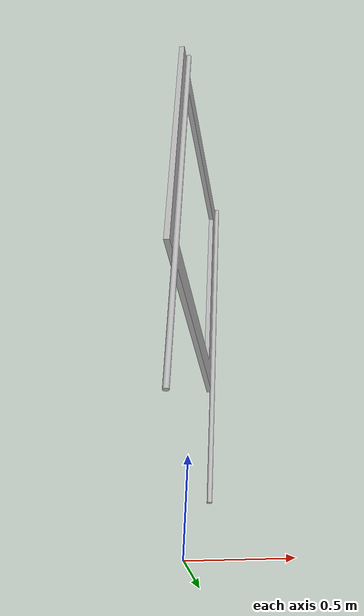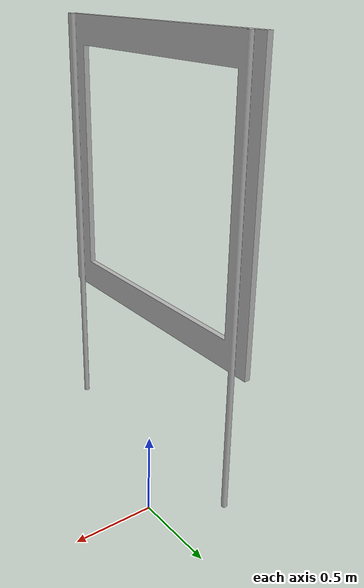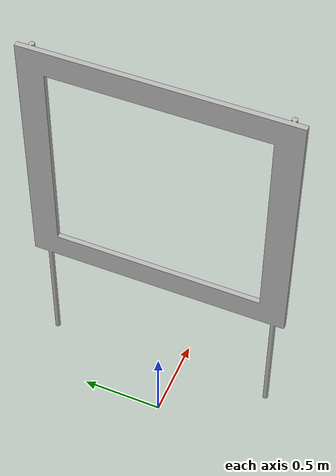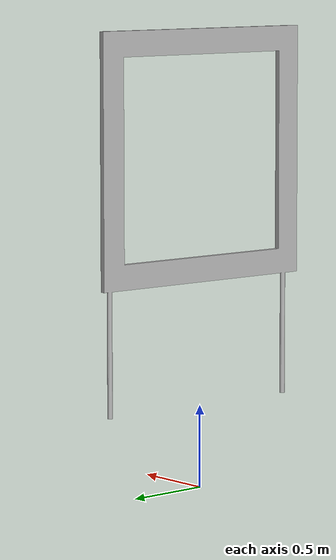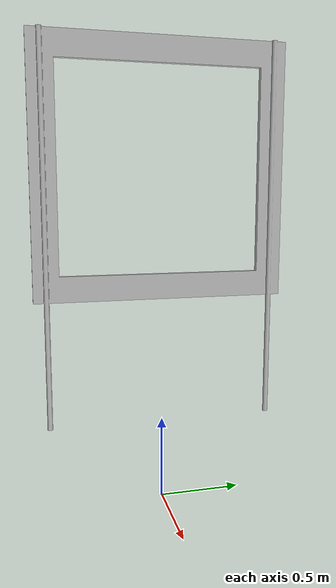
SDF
<?xml version='1.0'?>
<sdf version="1.4">
  <model name="my_model">
    <pose>0 0 0.5 0 0 0</pose>
    <static>true</static>
    <link name="link">
	<collision name="collision">
	<geometry>
      <mesh>
        <scale>1.5 1.5 1.5</scale>
		<uri>model://gate/meshes/gate_adjusted.dae</uri>
	  </mesh>
        </geometry>
	</collision>
      <visual name="visual">
        <geometry>
          <mesh>
        <scale>1.5 1.5 1.5</scale>
		<uri>model://gate/meshes/gate_adjusted.dae</uri>
	  </mesh>
        </geometry>
      </visual>
    </link>
  </model>
</sdf>
